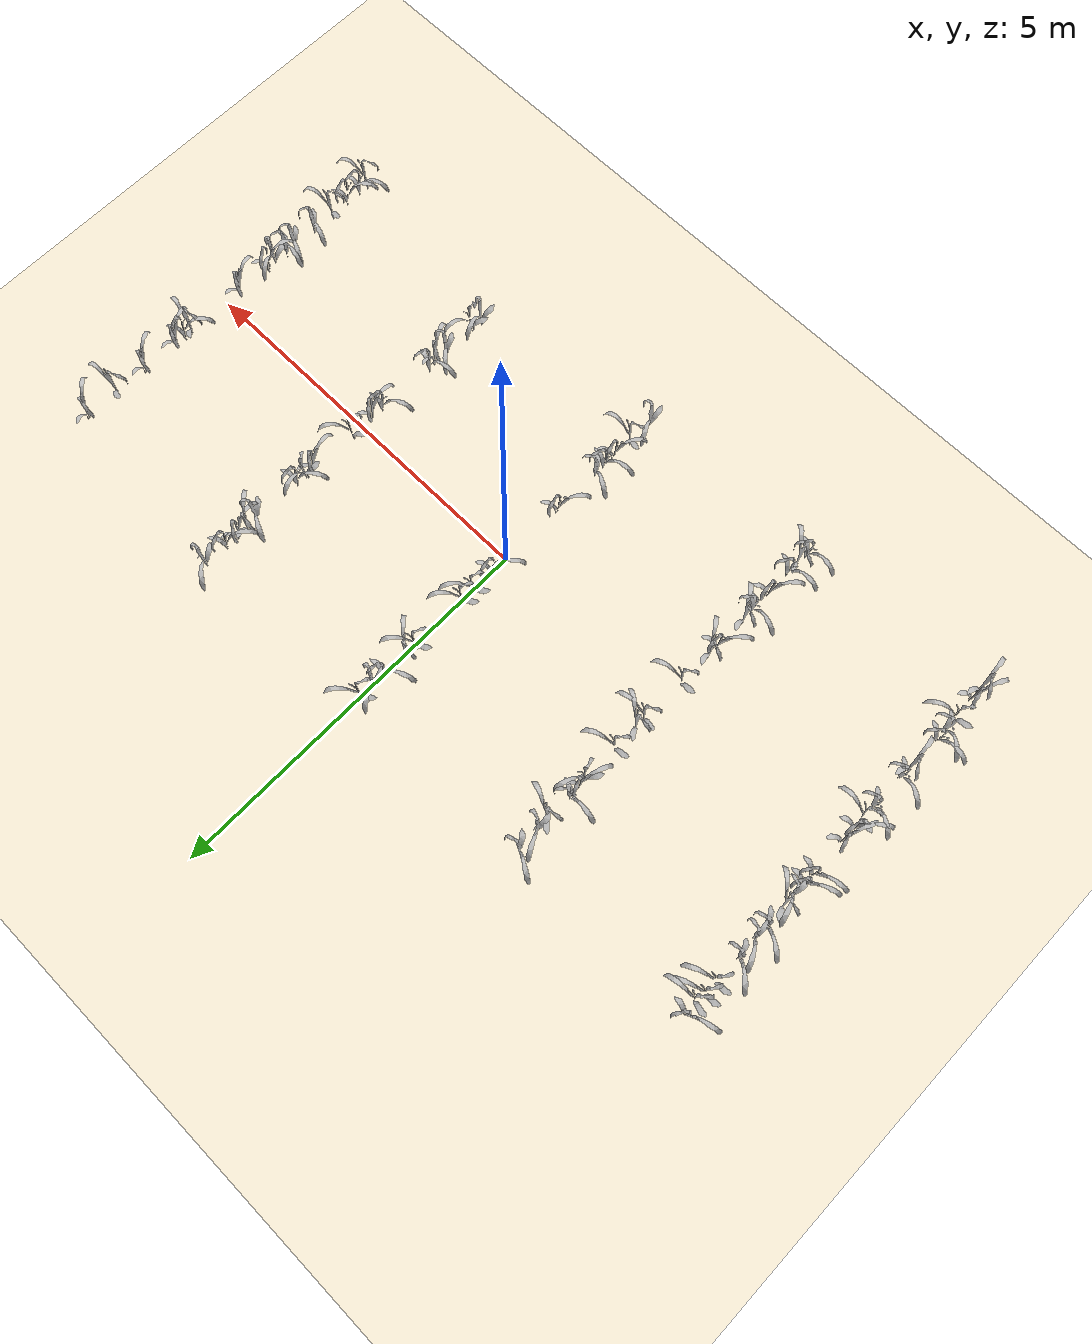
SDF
<sdf version="1.9">
 <world name="virtual_maize_field">
  <physics name="10ms" type="ignored">
   <max_step_size>0.01</max_step_size>
   <real_time_factor>1.0</real_time_factor>
  </physics>
  <plugin name="ignition::gazebo::systems::Physics" filename="ignition-gazebo-physics-system"/>
  <plugin name="ignition::gazebo::systems::UserCommands" filename="ignition-gazebo-user-commands-system"/>
  <plugin name="ignition::gazebo::systems::SceneBroadcaster" filename="ignition-gazebo-scene-broadcaster-system"/>
  <plugin name="ignition::gazebo::systems::Sensors" filename="ignition-gazebo-sensors-system">
   <render_engine>ogre2</render_engine>
  </plugin>
  <plugin name="ignition::gazebo::systems::Contact" filename="libignition-gazebo-contact-system.so"/>
  <spherical_coordinates>
   <surface_model>EARTH_WGS84</surface_model>
   <world_frame_orientation>ENU</world_frame_orientation>
   <latitude_deg>-22.9</latitude_deg>
   <longitude_deg>-43.2</longitude_deg>
   <elevation>0</elevation>
   <heading_deg>0</heading_deg>
  </spherical_coordinates>
  <light type="directional" name="sun">
   <pose>0 0 10 0 0 0</pose>
   <diffuse>0.8 0.8 0.8 1</diffuse>
   <specular>0.2 0.2 0.2 1</specular>
   <attenuation>
    <range>1000</range>
    <constant>0.9</constant>
    <linear>0.01</linear>
    <quadratic>0.001</quadratic>
   </attenuation>
   <direction>-0.5 0.1 -0.9</direction>
  </light>
  <model name="ground_plane">
   <static>true</static>
   <link name="link">
    <collision name="collision">
     <geometry><plane><normal>0 0 1</normal><size>100 100</size></plane></geometry>
    </collision>
    <visual name="visual">
     <geometry><plane><normal>0 0 1</normal><size>100 100</size></plane></geometry>
     <material>
      <ambient>0.94 0.90 0.81 1</ambient>
      <diffuse>0.94 0.90 0.81 1</diffuse>
      <specular>1 1 1 0</specular>
     </material>
    </visual>
   </link>
  </model>
  <include>
   <uri>model://maize_01</uri>
   <pose>-5.049085025779939 -2.6333969135462274 0.05137026739448231 0.0 0.0 5.607552268857365</pose>
   <name>maize_01_0000</name>
   <static>false</static>
  </include>
  <include>
   <uri>model://maize_01</uri>
   <pose>-5.052611132292544 -2.4938515949199886 0.05137026739448231 0.0 0.0 5.084538454283</pose>
   <name>maize_01_0001</name>
   <static>false</static>
  </include>
  <include>
   <uri>model://maize_01</uri>
   <pose>-5.064417777614725 -2.162812742546198 0.05137026739448231 0.0 0.0 1.2183178994919492</pose>
   <name>maize_01_0003</name>
   <static>false</static>
  </include>
  <include>
   <uri>model://maize_01</uri>
   <pose>-5.060061194633403 -1.973457499347816 0.05137026739448231 0.0 0.0 3.235883904059846</pose>
   <name>maize_01_0004</name>
   <static>false</static>
  </include>
  <include>
   <uri>model://maize_01</uri>
   <pose>-5.06155500043745 -1.8097583924690805 0.05137026739448231 0.0 0.0 3.7979068713507855</pose>
   <name>maize_01_0005</name>
   <static>false</static>
  </include>
  <include>
   <uri>model://maize_01</uri>
   <pose>-5.058252262505881 -1.3393903766217692 0.05137026739448231 0.0 0.0 5.599486369735554</pose>
   <name>maize_01_0008</name>
   <static>false</static>
  </include>
  <include>
   <uri>model://maize_01</uri>
   <pose>-5.045270659840905 -1.1996298023285659 0.05137026739448231 0.0 0.0 3.430402019668258</pose>
   <name>maize_01_0009</name>
   <static>false</static>
  </include>
  <include>
   <uri>model://maize_01</uri>
   <pose>-5.039877242901228 -0.7293986997407452 0.05137026739448231 0.0 0.0 3.3615105278512476</pose>
   <name>maize_01_0012</name>
   <static>false</static>
  </include>
  <include>
   <uri>model://maize_01</uri>
   <pose>-5.041916407952464 -0.5525857889549789 0.05137026739448231 0.0 0.0 0.7234511456433916</pose>
   <name>maize_01_0013</name>
   <static>false</static>
  </include>
  <include>
   <uri>model://maize_01</uri>
   <pose>-5.049757802281104 -0.39259790908451825 0.05137026739448231 0.0 0.0 4.612752627979899</pose>
   <name>maize_01_0014</name>
   <static>false</static>
  </include>
  <include>
   <uri>model://maize_01</uri>
   <pose>-5.045586985226886 -0.1977791920433459 0.05137026739448231 0.0 0.0 5.122304246338036</pose>
   <name>maize_01_0015</name>
   <static>false</static>
  </include>
  <include>
   <uri>model://maize_01</uri>
   <pose>-5.046700508286201 0.3162562804974382 0.05137026739448231 0.0 0.0 4.112043522807316</pose>
   <name>maize_01_0018</name>
   <static>false</static>
  </include>
  <include>
   <uri>model://maize_01</uri>
   <pose>-5.043909716178231 0.4688701591628521 0.05137026739448231 0.0 0.0 4.299953470698857</pose>
   <name>maize_01_0019</name>
   <static>false</static>
  </include>
  <include>
   <uri>model://maize_01</uri>
   <pose>-5.031978828547268 0.6274491887308876 0.05137026739448231 0.0 0.0 2.6689633856173547</pose>
   <name>maize_01_0020</name>
   <static>false</static>
  </include>
  <include>
   <uri>model://maize_01</uri>
   <pose>-5.054261309385795 0.7982426096483483 0.05137026739448231 0.0 0.0 6.281083075449328</pose>
   <name>maize_01_0021</name>
   <static>false</static>
  </include>
  <include>
   <uri>model://maize_01</uri>
   <pose>-5.047724001745256 1.0951082630377535 0.05137026739448231 0.0 0.0 3.3140778813809173</pose>
   <name>maize_01_0023</name>
   <static>false</static>
  </include>
  <include>
   <uri>model://maize_01</uri>
   <pose>-5.037506848920477 1.2654996675740242 0.05137026739448231 0.0 0.0 2.833932218645615</pose>
   <name>maize_01_0024</name>
   <static>false</static>
  </include>
  <include>
   <uri>model://maize_01</uri>
   <pose>-5.062674931806479 1.5469943925173464 0.05137026739448231 0.0 0.0 3.1782410928654183</pose>
   <name>maize_01_0026</name>
   <static>false</static>
  </include>
  <include>
   <uri>model://maize_01</uri>
   <pose>-5.054571215791097 1.9053518416097592 0.05137026739448231 0.0 0.0 1.1844708550000285</pose>
   <name>maize_01_0028</name>
   <static>false</static>
  </include>
  <include>
   <uri>model://maize_01</uri>
   <pose>-5.056186056832214 2.077687333731011 0.05137026739448231 0.0 0.0 1.2044225760920313</pose>
   <name>maize_01_0029</name>
   <static>false</static>
  </include>
  <include>
   <uri>model://maize_01</uri>
   <pose>-5.027826050270503 2.2071806683345905 0.05137026739448231 0.0 0.0 0.9178980411041563</pose>
   <name>maize_01_0030</name>
   <static>false</static>
  </include>
  <include>
   <uri>model://maize_01</uri>
   <pose>-5.044741927111042 2.3889244872053714 0.05137026739448231 0.0 0.0 4.177925517901551</pose>
   <name>maize_01_0031</name>
   <static>false</static>
  </include>
  <include>
   <uri>model://maize_01</uri>
   <pose>-2.555411384722998 -2.490508721687373 0.04839891071541206 0.0 0.0 3.815838348213252</pose>
   <name>maize_01_0034</name>
   <static>false</static>
  </include>
  <include>
   <uri>model://maize_01</uri>
   <pose>-2.5415370666855392 -2.347882683333705 0.04839891071541206 0.0 0.0 6.250361282840021</pose>
   <name>maize_01_0035</name>
   <static>false</static>
  </include>
  <include>
   <uri>model://maize_01</uri>
   <pose>-2.538974556025229 -2.1661927660437708 0.04839891071541206 0.0 0.0 3.9204287218899276</pose>
   <name>maize_01_0036</name>
   <static>false</static>
  </include>
  <include>
   <uri>model://maize_01</uri>
   <pose>-2.548391164187719 -1.8044881185631771 0.04839891071541206 0.0 0.0 4.810760431463955</pose>
   <name>maize_01_0038</name>
   <static>false</static>
  </include>
  <include>
   <uri>model://maize_01</uri>
   <pose>-2.5478391144367927 -1.5149157788594185 0.04839891071541206 0.0 0.0 3.6412936004417564</pose>
   <name>maize_01_0040</name>
   <static>false</static>
  </include>
  <include>
   <uri>model://maize_01</uri>
   <pose>-2.5650514134679465 -1.3543153369171859 0.04839891071541206 0.0 0.0 6.086471813339113</pose>
   <name>maize_01_0041</name>
   <static>false</static>
  </include>
  <include>
   <uri>model://maize_01</uri>
   <pose>-2.5505487780484226 -0.8982342697679889 0.04839891071541206 0.0 0.0 4.753237480357721</pose>
   <name>maize_01_0044</name>
   <static>false</static>
  </include>
  <include>
   <uri>model://maize_01</uri>
   <pose>-2.5567442970113845 -0.7732662571832204 0.04839891071541206 0.0 0.0 6.10987348673216</pose>
   <name>maize_01_0045</name>
   <static>false</static>
  </include>
  <include>
   <uri>model://maize_01</uri>
   <pose>-2.559854197262313 -0.2980702119665422 0.04839891071541206 0.0 0.0 1.0585368994801427</pose>
   <name>maize_01_0048</name>
   <static>false</static>
  </include>
  <include>
   <uri>model://maize_01</uri>
   <pose>-2.5382250449426182 0.3123900056944979 0.04839891071541206 0.0 0.0 0.901705164803615</pose>
   <name>maize_01_0052</name>
   <static>false</static>
  </include>
  <include>
   <uri>model://maize_01</uri>
   <pose>-2.5418888842502416 0.45814905787179144 0.04839891071541206 0.0 0.0 0.1831959607841034</pose>
   <name>maize_01_0053</name>
   <static>false</static>
  </include>
  <include>
   <uri>model://maize_01</uri>
   <pose>-2.5350757281190184 0.7996718014099827 0.04839891071541206 0.0 0.0 1.1912455718334327</pose>
   <name>maize_01_0055</name>
   <static>false</static>
  </include>
  <include>
   <uri>model://maize_01</uri>
   <pose>-2.533413219087222 1.280053911900735 0.04839891071541206 0.0 0.0 2.0361237604949274</pose>
   <name>maize_01_0058</name>
   <static>false</static>
  </include>
  <include>
   <uri>model://maize_01</uri>
   <pose>-2.5438363542039033 1.3950759826571586 0.04839891071541206 0.0 0.0 5.150455359914973</pose>
   <name>maize_01_0059</name>
   <static>false</static>
  </include>
  <include>
   <uri>model://maize_01</uri>
   <pose>-2.5635710718259057 1.5724685288802425 0.04839891071541206 0.0 0.0 3.818094245518999</pose>
   <name>maize_01_0060</name>
   <static>false</static>
  </include>
  <include>
   <uri>model://maize_01</uri>
   <pose>-2.5499187366587868 1.9089488529360672 0.04839891071541206 0.0 0.0 0.40161156798170294</pose>
   <name>maize_01_0062</name>
   <static>false</static>
  </include>
  <include>
   <uri>model://maize_01</uri>
   <pose>-2.550962751629936 2.0653677523552947 0.04839891071541206 0.0 0.0 2.8535363947590637</pose>
   <name>maize_01_0063</name>
   <static>false</static>
  </include>
  <include>
   <uri>model://maize_01</uri>
   <pose>-2.5638517696598364 2.382510829028413 0.04839891071541206 0.0 0.0 3.3942693309463734</pose>
   <name>maize_01_0065</name>
   <static>false</static>
  </include>
  <include>
   <uri>model://maize_01</uri>
   <pose>-0.045298057566693105 -2.4730464976450612 0.04785783812337751 0.0 0.0 2.8174622165923733</pose>
   <name>maize_01_0068</name>
   <static>false</static>
  </include>
  <include>
   <uri>model://maize_01</uri>
   <pose>-0.03740544002844234 -2.1255115574560963 0.04785783812337751 0.0 0.0 0.8711863691756038</pose>
   <name>maize_01_0070</name>
   <static>false</static>
  </include>
  <include>
   <uri>model://maize_01</uri>
   <pose>-0.034907691261914474 -1.8271724089129477 0.04785783812337751 0.0 0.0 4.958386472886049</pose>
   <name>maize_01_0072</name>
   <static>false</static>
  </include>
  <include>
   <uri>model://maize_01</uri>
   <pose>-0.03333010043208214 -1.6502857614462827 0.04785783812337751 0.0 0.0 4.145624054422507</pose>
   <name>maize_01_0073</name>
   <static>false</static>
  </include>
  <include>
   <uri>model://maize_01</uri>
   <pose>-0.03278073184677107 -1.4968246922810586 0.04785783812337751 0.0 0.0 3.4180346910334123</pose>
   <name>maize_01_0074</name>
   <static>false</static>
  </include>
  <include>
   <uri>model://maize_01</uri>
   <pose>-0.042098158884832225 -0.8338927507736252 0.04785783812337751 0.0 0.0 4.9043531357017205</pose>
   <name>maize_01_0078</name>
   <static>false</static>
  </include>
  <include>
   <uri>model://maize_01</uri>
   <pose>-0.03722960345342282 0.2748460659304585 0.04858193848811212 0.0 0.0 4.775511784625629</pose>
   <name>maize_01_0085</name>
   <static>false</static>
  </include>
  <include>
   <uri>model://maize_01</uri>
   <pose>-0.05354350728150655 0.5860074099745826 0.04858193848811212 0.0 0.0 1.7136301953034587</pose>
   <name>maize_01_0087</name>
   <static>false</static>
  </include>
  <include>
   <uri>model://maize_01</uri>
   <pose>-0.053679469506105436 0.7648982436437816 0.04858193848811212 0.0 0.0 1.6479064165106008</pose>
   <name>maize_01_0088</name>
   <static>false</static>
  </include>
  <include>
   <uri>model://maize_01</uri>
   <pose>-0.05925815579252588 1.5316142536034336 0.04858193848811212 0.0 0.0 1.6139227280168977</pose>
   <name>maize_01_0093</name>
   <static>false</static>
  </include>
  <include>
   <uri>model://maize_01</uri>
   <pose>-0.045083470488380316 1.6922855099449823 0.04858193848811212 0.0 0.0 0.043299229682268445</pose>
   <name>maize_01_0094</name>
   <static>false</static>
  </include>
  <include>
   <uri>model://maize_01</uri>
   <pose>-0.04293540305578832 2.044087030518413 0.04995406780261007 0.0 0.0 4.35962656027506</pose>
   <name>maize_01_0096</name>
   <static>false</static>
  </include>
  <include>
   <uri>model://maize_01</uri>
   <pose>-0.038035192131245475 2.1866607873948887 0.04995406780261007 0.0 0.0 2.9596251267620315</pose>
   <name>maize_01_0097</name>
   <static>false</static>
  </include>
  <include>
   <uri>model://maize_01</uri>
   <pose>-0.042109077409651606 2.391316458893842 0.04995406780261007 0.0 0.0 1.616122930393683</pose>
   <name>maize_01_0098</name>
   <static>false</static>
  </include>
  <include>
   <uri>model://maize_01</uri>
   <pose>2.4446551275667363 -2.037386690104517 0.04536769977813852 0.0 0.0 2.7010736337502053</pose>
   <name>maize_01_0104</name>
   <static>false</static>
  </include>
  <include>
   <uri>model://maize_01</uri>
   <pose>2.4725581644943593 -1.8954561236295309 0.045757668717521044 0.0 0.0 2.141095039894731</pose>
   <name>maize_01_0105</name>
   <static>false</static>
  </include>
  <include>
   <uri>model://maize_01</uri>
   <pose>2.446352836886453 -1.4113844965044058 0.046370382054528654 0.0 0.0 3.169955690124359</pose>
   <name>maize_01_0108</name>
   <static>false</static>
  </include>
  <include>
   <uri>model://maize_01</uri>
   <pose>2.4692486655375103 -1.2305982186368334 0.04622236554310939 0.0 0.0 5.955138626005278</pose>
   <name>maize_01_0109</name>
   <static>false</static>
  </include>
  <include>
   <uri>model://maize_01</uri>
   <pose>2.433922875853582 -1.0997730237479637 0.04622236554310939 0.0 0.0 4.109661881626075</pose>
   <name>maize_01_0110</name>
   <static>false</static>
  </include>
  <include>
   <uri>model://maize_01</uri>
   <pose>2.4389414683275175 -0.303511436429639 0.04745915718845366 0.0 0.0 4.391532017657494</pose>
   <name>maize_01_0115</name>
   <static>false</static>
  </include>
  <include>
   <uri>model://maize_01</uri>
   <pose>2.460830556454946 -0.14758635807117146 0.04765480135830952 0.0 0.0 5.5454959647206925</pose>
   <name>maize_01_0116</name>
   <static>false</static>
  </include>
  <include>
   <uri>model://maize_01</uri>
   <pose>2.437298753306741 0.19291673714715243 0.04765480135830952 0.0 0.0 1.6799779930475907</pose>
   <name>maize_01_0118</name>
   <static>false</static>
  </include>
  <include>
   <uri>model://maize_01</uri>
   <pose>2.4627054517375906 0.8327117197094863 0.04891605461016763 0.0 0.0 5.671550334262027</pose>
   <name>maize_01_0122</name>
   <static>false</static>
  </include>
  <include>
   <uri>model://maize_01</uri>
   <pose>2.4467371257670174 0.9634112504605218 0.04891605461016763 0.0 0.0 2.580218071170236</pose>
   <name>maize_01_0123</name>
   <static>false</static>
  </include>
  <include>
   <uri>model://maize_01</uri>
   <pose>2.4523082784005896 1.1116939904204588 0.04891605461016763 0.0 0.0 4.6033414151139445</pose>
   <name>maize_01_0124</name>
   <static>false</static>
  </include>
  <include>
   <uri>model://maize_01</uri>
   <pose>2.468898927762417 1.7537061256159001 0.04891605461016763 0.0 0.0 3.4764281889495354</pose>
   <name>maize_01_0128</name>
   <static>false</static>
  </include>
  <include>
   <uri>model://maize_01</uri>
   <pose>2.433448369986252 1.9302737125945528 0.04922806750993615 0.0 0.0 0.020919771341338655</pose>
   <name>maize_01_0129</name>
   <static>false</static>
  </include>
  <include>
   <uri>model://maize_01</uri>
   <pose>2.4437105804483177 2.0641249147755225 0.04922806750993615 0.0 0.0 5.666455493091566</pose>
   <name>maize_01_0130</name>
   <static>false</static>
  </include>
  <include>
   <uri>model://maize_01</uri>
   <pose>2.4423806465807174 2.255282860015326 0.04922806750993615 0.0 0.0 4.908016908449915</pose>
   <name>maize_01_0131</name>
   <static>false</static>
  </include>
  <include>
   <uri>model://maize_01</uri>
   <pose>2.4577230846162155 2.5672857706805168 0.04922806750993615 0.0 0.0 3.2475524798816022</pose>
   <name>maize_01_0133</name>
   <static>false</static>
  </include>
  <include>
   <uri>model://maize_01</uri>
   <pose>4.969299645324043 -2.4303304635882905 0.04890437991534195 0.0 0.0 1.1105522753266173</pose>
   <name>maize_01_0135</name>
   <static>false</static>
  </include>
  <include>
   <uri>model://maize_01</uri>
   <pose>4.9400919415018105 -2.2734896736450345 0.04890437991534195 0.0 0.0 4.406371572524281</pose>
   <name>maize_01_0136</name>
   <static>false</static>
  </include>
  <include>
   <uri>model://maize_01</uri>
   <pose>4.950202512092819 -2.065751476026152 0.04890437991534195 0.0 0.0 4.8141867281100765</pose>
   <name>maize_01_0137</name>
   <static>false</static>
  </include>
  <include>
   <uri>model://maize_01</uri>
   <pose>4.94766560526312 -1.7962018009413252 0.04890437991534195 0.0 0.0 1.0355710221976078</pose>
   <name>maize_01_0139</name>
   <static>false</static>
  </include>
  <include>
   <uri>model://maize_01</uri>
   <pose>4.946766478866124 -1.4649666493090117 0.04890437991534195 0.0 0.0 3.6024798919826426</pose>
   <name>maize_01_0141</name>
   <static>false</static>
  </include>
  <include>
   <uri>model://maize_01</uri>
   <pose>4.943656886356145 -1.118021352308174 0.04890437991534195 0.0 0.0 3.484920537113811</pose>
   <name>maize_01_0143</name>
   <static>false</static>
  </include>
  <include>
   <uri>model://maize_01</uri>
   <pose>4.945060377307055 -0.9792256536652238 0.04890437991534195 0.0 0.0 3.776346633638603</pose>
   <name>maize_01_0144</name>
   <static>false</static>
  </include>
  <include>
   <uri>model://maize_01</uri>
   <pose>4.955978327131001 -0.7996973003813149 0.04890437991534195 0.0 0.0 2.9365116053398763</pose>
   <name>maize_01_0145</name>
   <static>false</static>
  </include>
  <include>
   <uri>model://maize_01</uri>
   <pose>4.939210049805583 -0.6741047574484579 0.04890437991534195 0.0 0.0 5.316299182233493</pose>
   <name>maize_01_0146</name>
   <static>false</static>
  </include>
  <include>
   <uri>model://maize_01</uri>
   <pose>4.936032805728722 -0.17654122635502575 0.04890437991534195 0.0 0.0 5.848739504601894</pose>
   <name>maize_01_0149</name>
   <static>false</static>
  </include>
  <include>
   <uri>model://maize_01</uri>
   <pose>4.9518263202235335 0.621438356557649 0.04890437991534195 0.0 0.0 0.5939964220181035</pose>
   <name>maize_01_0154</name>
   <static>false</static>
  </include>
  <include>
   <uri>model://maize_01</uri>
   <pose>4.953374297065096 0.7366385884378265 0.04890437991534195 0.0 0.0 4.88213199911231</pose>
   <name>maize_01_0155</name>
   <static>false</static>
  </include>
  <include>
   <uri>model://maize_01</uri>
   <pose>4.9394221139413315 0.8811879145621963 0.04890437991534195 0.0 0.0 5.923382861319762</pose>
   <name>maize_01_0156</name>
   <static>false</static>
  </include>
  <include>
   <uri>model://maize_01</uri>
   <pose>4.945849092849272 1.3913192053149732 0.04890437991534195 0.0 0.0 6.126102440354247</pose>
   <name>maize_01_0159</name>
   <static>false</static>
  </include>
  <include>
   <uri>model://maize_01</uri>
   <pose>4.965024430892067 1.8354525820588954 0.04890437991534195 0.0 0.0 0.87441010607157</pose>
   <name>maize_01_0162</name>
   <static>false</static>
  </include>
  <include>
   <uri>model://maize_01</uri>
   <pose>4.95996037139197 2.301228187704761 0.04890437991534195 0.0 0.0 0.041757876967279665</pose>
   <name>maize_01_0165</name>
   <static>false</static>
  </include>
 </world>
</sdf>

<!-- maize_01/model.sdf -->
<sdf version="1.6">
  <model name='maize_01'>
    <pose frame=''>0 0 0.05 0 -0 0</pose>
    <link name='maize_01_link'>
      <inertial>
        <pose>0 0 0.01 0 0 0</pose>
        <mass>0.3</mass>
        <inertia>
          <ixx>0.0033416667</ixx>
          <ixy>0</ixy>
          <ixz>0</ixz>
          <iyy>0.0033416667</iyy>
          <iyz>0</iyz>
          <izz>0.000016666667</izz>
        </inertia>
        <pose>0 0 0.1 0 0 0</pose>
      </inertial>
      <collision name='collision'>
        <pose>0 0 0.2 0 -0 0</pose>
        <geometry>
          <box>
            <size>0.02 0.02 0.4</size>
          </box>
        </geometry>
        <max_contacts>10</max_contacts>
        <surface>
          <contact>
            <ode/>
          </contact>
          <bounce/>
          <friction>
            <ode>
              <mu>10</mu>
              <mu2>10</mu2>
            </ode>
          </friction>
        </surface>
      </collision>
      <visual name='visual'>
        <geometry>
          <mesh>
            <uri>model://maize_01/meshes/maize_01.dae</uri>
            <scale>0.683166466464586 0.683166466464586 0.683166466464586</scale>
          </mesh>
        </geometry>
      </visual>
      <self_collide>0</self_collide>
      <enable_wind>0</enable_wind>
      <kinematic>0</kinematic>
    </link>
  </model>
</sdf>
